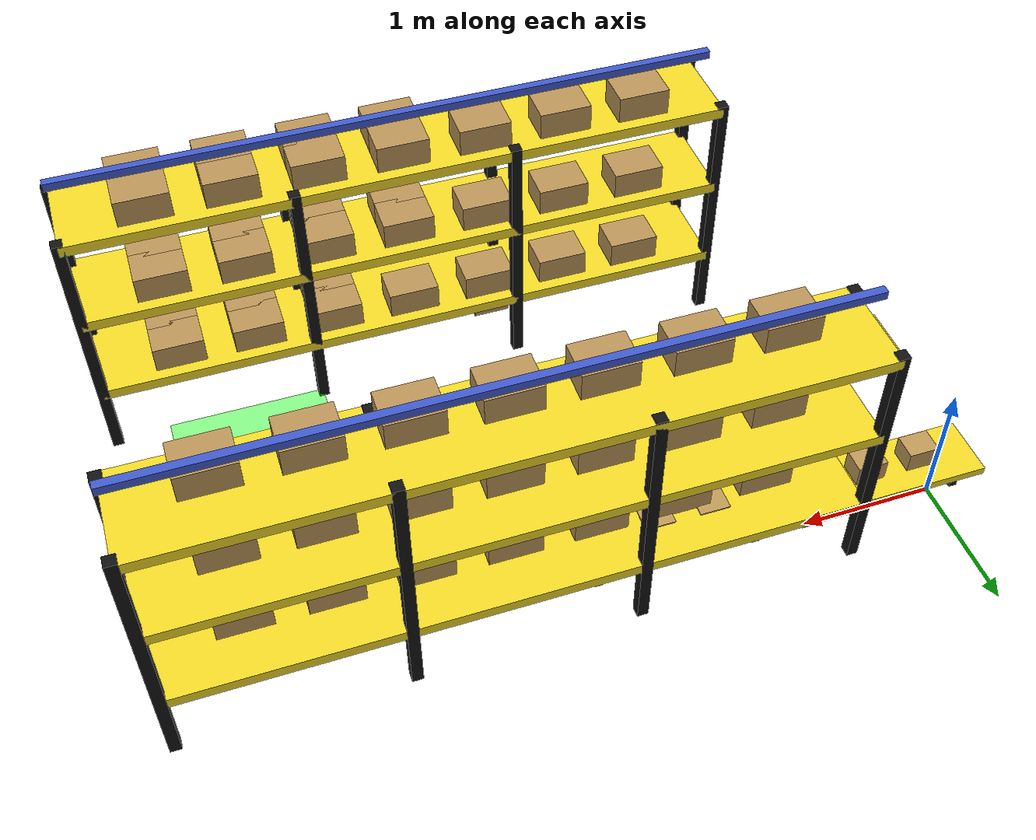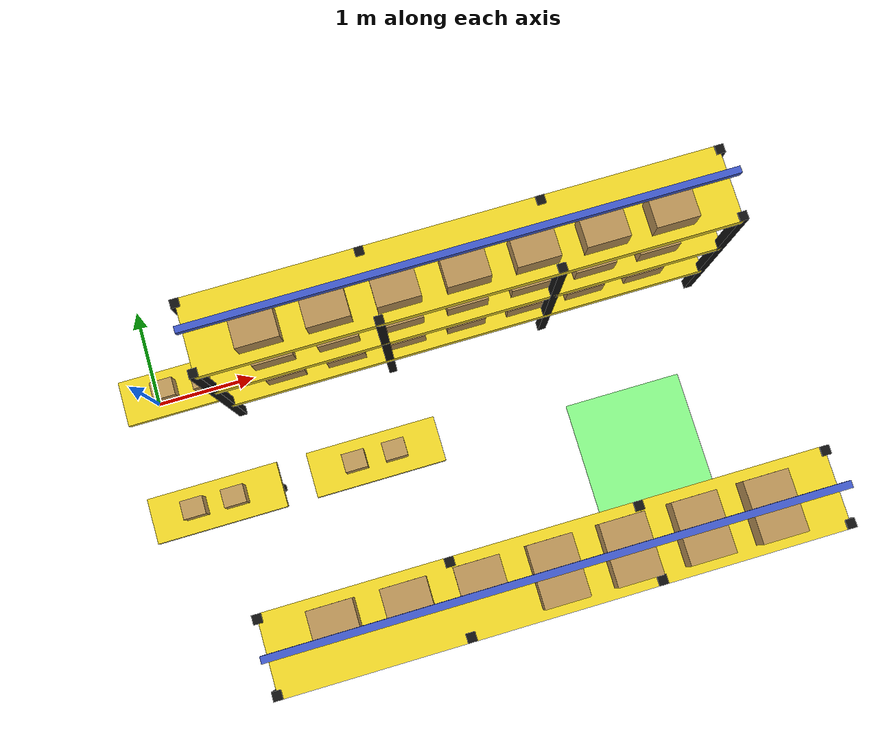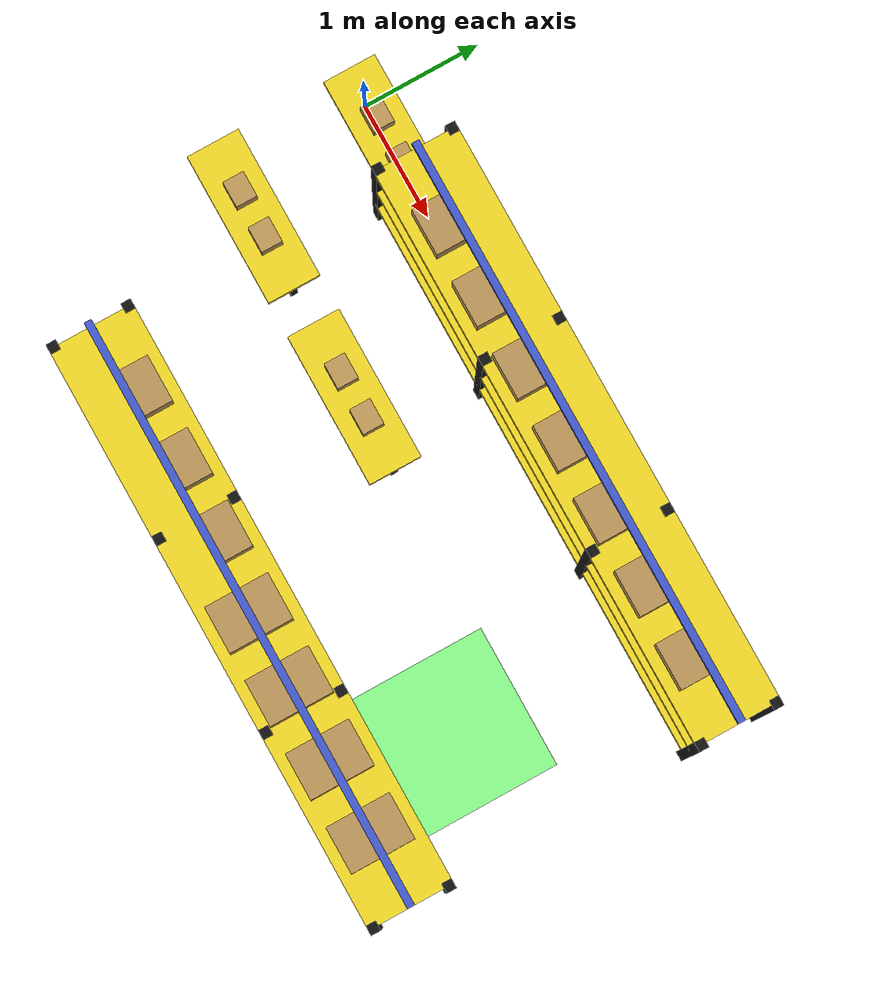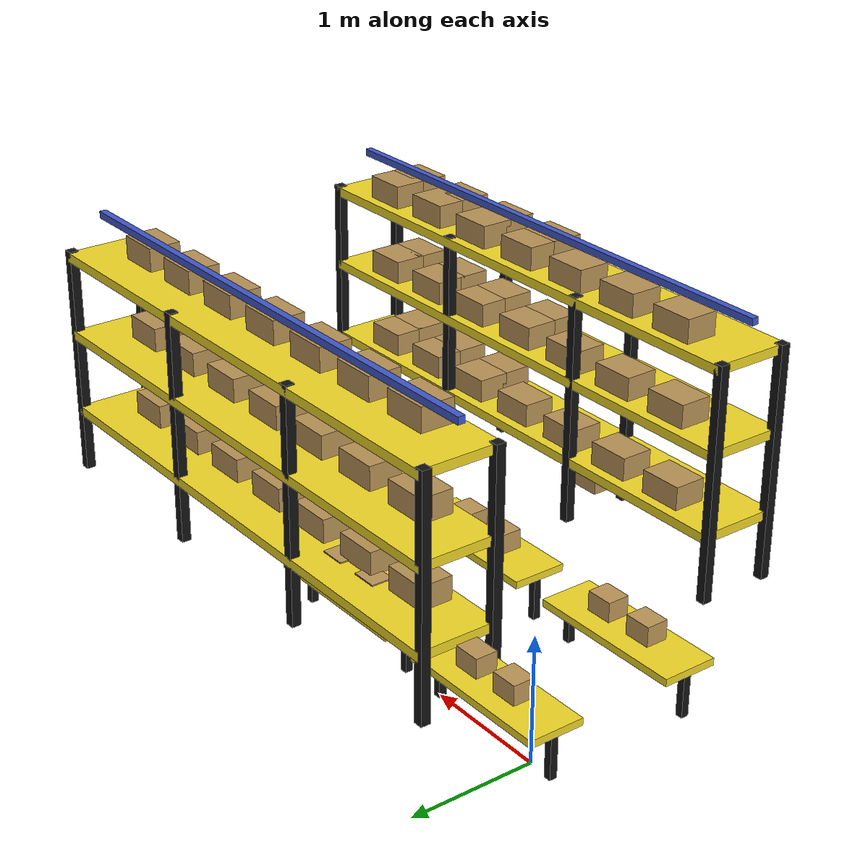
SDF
<sdf version="1.6">
 <world name="fuel_warehouse_world">
  <include><uri>model://sun</uri></include>
  <model name="right_rack_middle">
   <static>true</static>
   <pose>3.2 0.0 0 0 0 0.0</pose>
   <link name="deck_0">
    <pose>0 0 0.55 0 0 0</pose>
    <visual name="visual">
     <geometry><box><size>4.8 0.7 0.08</size></box></geometry>
     <material><ambient>0.95 0.85 0.15 1</ambient><diffuse>0.95 0.85 0.15 1</diffuse></material>
    </visual>
    <collision name="collision"><geometry><box><size>4.8 0.7 0.08</size></box></geometry></collision>
   </link>
   <link name="deck_1">
    <pose>0 0 1.25 0 0 0</pose>
    <visual name="visual">
     <geometry><box><size>4.8 0.7 0.08</size></box></geometry>
     <material><ambient>0.95 0.85 0.15 1</ambient><diffuse>0.95 0.85 0.15 1</diffuse></material>
    </visual>
    <collision name="collision"><geometry><box><size>4.8 0.7 0.08</size></box></geometry></collision>
   </link>
   <link name="deck_2">
    <pose>0 0 1.95 0 0 0</pose>
    <visual name="visual">
     <geometry><box><size>4.8 0.7 0.08</size></box></geometry>
     <material><ambient>0.95 0.85 0.15 1</ambient><diffuse>0.95 0.85 0.15 1</diffuse></material>
    </visual>
    <collision name="collision"><geometry><box><size>4.8 0.7 0.08</size></box></geometry></collision>
   </link>
   <link name="leg_0_0">
    <pose>-2.4 -0.31 1.0 0 0 0</pose>
    <visual name="visual">
     <geometry><box><size>0.08 0.08 2.0</size></box></geometry>
     <material><ambient>0.07 0.07 0.07 1</ambient><diffuse>0.07 0.07 0.07 1</diffuse></material>
    </visual>
    <collision name="collision"><geometry><box><size>0.08 0.08 2.0</size></box></geometry></collision>
   </link>
   <link name="leg_0_1">
    <pose>-2.4 0.31 1.0 0 0 0</pose>
    <visual name="visual">
     <geometry><box><size>0.08 0.08 2.0</size></box></geometry>
     <material><ambient>0.07 0.07 0.07 1</ambient><diffuse>0.07 0.07 0.07 1</diffuse></material>
    </visual>
    <collision name="collision"><geometry><box><size>0.08 0.08 2.0</size></box></geometry></collision>
   </link>
   <link name="leg_1_0">
    <pose>-0.7999999999999999 -0.31 1.0 0 0 0</pose>
    <visual name="visual">
     <geometry><box><size>0.08 0.08 2.0</size></box></geometry>
     <material><ambient>0.07 0.07 0.07 1</ambient><diffuse>0.07 0.07 0.07 1</diffuse></material>
    </visual>
    <collision name="collision"><geometry><box><size>0.08 0.08 2.0</size></box></geometry></collision>
   </link>
   <link name="leg_1_1">
    <pose>-0.7999999999999999 0.31 1.0 0 0 0</pose>
    <visual name="visual">
     <geometry><box><size>0.08 0.08 2.0</size></box></geometry>
     <material><ambient>0.07 0.07 0.07 1</ambient><diffuse>0.07 0.07 0.07 1</diffuse></material>
    </visual>
    <collision name="collision"><geometry><box><size>0.08 0.08 2.0</size></box></geometry></collision>
   </link>
   <link name="leg_2_0">
    <pose>0.7999999999999999 -0.31 1.0 0 0 0</pose>
    <visual name="visual">
     <geometry><box><size>0.08 0.08 2.0</size></box></geometry>
     <material><ambient>0.07 0.07 0.07 1</ambient><diffuse>0.07 0.07 0.07 1</diffuse></material>
    </visual>
    <collision name="collision"><geometry><box><size>0.08 0.08 2.0</size></box></geometry></collision>
   </link>
   <link name="leg_2_1">
    <pose>0.7999999999999999 0.31 1.0 0 0 0</pose>
    <visual name="visual">
     <geometry><box><size>0.08 0.08 2.0</size></box></geometry>
     <material><ambient>0.07 0.07 0.07 1</ambient><diffuse>0.07 0.07 0.07 1</diffuse></material>
    </visual>
    <collision name="collision"><geometry><box><size>0.08 0.08 2.0</size></box></geometry></collision>
   </link>
   <link name="leg_3_0">
    <pose>2.4 -0.31 1.0 0 0 0</pose>
    <visual name="visual">
     <geometry><box><size>0.08 0.08 2.0</size></box></geometry>
     <material><ambient>0.07 0.07 0.07 1</ambient><diffuse>0.07 0.07 0.07 1</diffuse></material>
    </visual>
    <collision name="collision"><geometry><box><size>0.08 0.08 2.0</size></box></geometry></collision>
   </link>
   <link name="leg_3_1">
    <pose>2.4 0.31 1.0 0 0 0</pose>
    <visual name="visual">
     <geometry><box><size>0.08 0.08 2.0</size></box></geometry>
     <material><ambient>0.07 0.07 0.07 1</ambient><diffuse>0.07 0.07 0.07 1</diffuse></material>
    </visual>
    <collision name="collision"><geometry><box><size>0.08 0.08 2.0</size></box></geometry></collision>
   </link>
   <link name="top_beam">
    <pose>0 0 2.25 0 0 0</pose>
    <visual name="visual">
     <geometry><box><size>4.8 0.06 0.06</size></box></geometry>
     <material><ambient>0.25 0.35 0.8 1</ambient><diffuse>0.25 0.35 0.8 1</diffuse></material>
    </visual>
   </link>
  </model>
  <model name="right_rack_middle_box_0">
   <static>true</static>
   <pose>1.4000000000000001 -0.12 0.68 0 0 0</pose>
   <link name="link">
    <visual name="visual">
     <geometry><box><size>0.38 0.28 0.22</size></box></geometry>
     <material><ambient>0.73 0.58 0.34 1</ambient><diffuse>0.73 0.58 0.34 1</diffuse></material>
    </visual>
    <collision name="collision"><geometry><box><size>0.38 0.28 0.22</size></box></geometry></collision>
   </link>
  </model>
  <model name="right_rack_middle_box_2">
   <static>true</static>
   <pose>2.0 -0.12 0.68 0 0 0</pose>
   <link name="link">
    <visual name="visual">
     <geometry><box><size>0.38 0.28 0.22</size></box></geometry>
     <material><ambient>0.73 0.58 0.34 1</ambient><diffuse>0.73 0.58 0.34 1</diffuse></material>
    </visual>
    <collision name="collision"><geometry><box><size>0.38 0.28 0.22</size></box></geometry></collision>
   </link>
  </model>
  <model name="right_rack_middle_box_4">
   <static>true</static>
   <pose>2.6 -0.12 0.68 0 0 0</pose>
   <link name="link">
    <visual name="visual">
     <geometry><box><size>0.38 0.28 0.22</size></box></geometry>
     <material><ambient>0.73 0.58 0.34 1</ambient><diffuse>0.73 0.58 0.34 1</diffuse></material>
    </visual>
    <collision name="collision"><geometry><box><size>0.38 0.28 0.22</size></box></geometry></collision>
   </link>
  </model>
  <model name="right_rack_middle_box_6">
   <static>true</static>
   <pose>3.2 -0.12 0.68 0 0 0</pose>
   <link name="link">
    <visual name="visual">
     <geometry><box><size>0.38 0.28 0.22</size></box></geometry>
     <material><ambient>0.73 0.58 0.34 1</ambient><diffuse>0.73 0.58 0.34 1</diffuse></material>
    </visual>
    <collision name="collision"><geometry><box><size>0.38 0.28 0.22</size></box></geometry></collision>
   </link>
  </model>
  <model name="right_rack_middle_box_8">
   <static>true</static>
   <pose>3.8000000000000003 -0.12 0.68 0 0 0</pose>
   <link name="link">
    <visual name="visual">
     <geometry><box><size>0.38 0.28 0.22</size></box></geometry>
     <material><ambient>0.73 0.58 0.34 1</ambient><diffuse>0.73 0.58 0.34 1</diffuse></material>
    </visual>
    <collision name="collision"><geometry><box><size>0.38 0.28 0.22</size></box></geometry></collision>
   </link>
  </model>
  <model name="right_rack_middle_box_10">
   <static>true</static>
   <pose>4.4 -0.12 0.68 0 0 0</pose>
   <link name="link">
    <visual name="visual">
     <geometry><box><size>0.38 0.28 0.22</size></box></geometry>
     <material><ambient>0.73 0.58 0.34 1</ambient><diffuse>0.73 0.58 0.34 1</diffuse></material>
    </visual>
    <collision name="collision"><geometry><box><size>0.38 0.28 0.22</size></box></geometry></collision>
   </link>
  </model>
  <model name="right_rack_middle_box_12">
   <static>true</static>
   <pose>5.0 -0.12 0.68 0 0 0</pose>
   <link name="link">
    <visual name="visual">
     <geometry><box><size>0.38 0.28 0.22</size></box></geometry>
     <material><ambient>0.73 0.58 0.34 1</ambient><diffuse>0.73 0.58 0.34 1</diffuse></material>
    </visual>
    <collision name="collision"><geometry><box><size>0.38 0.28 0.22</size></box></geometry></collision>
   </link>
  </model>
  <model name="right_rack_middle_box_14">
   <static>true</static>
   <pose>1.4000000000000001 -0.12 1.38 0 0 0</pose>
   <link name="link">
    <visual name="visual">
     <geometry><box><size>0.38 0.28 0.22</size></box></geometry>
     <material><ambient>0.73 0.58 0.34 1</ambient><diffuse>0.73 0.58 0.34 1</diffuse></material>
    </visual>
    <collision name="collision"><geometry><box><size>0.38 0.28 0.22</size></box></geometry></collision>
   </link>
  </model>
  <model name="right_rack_middle_box_16">
   <static>true</static>
   <pose>2.0 -0.12 1.38 0 0 0</pose>
   <link name="link">
    <visual name="visual">
     <geometry><box><size>0.38 0.28 0.22</size></box></geometry>
     <material><ambient>0.73 0.58 0.34 1</ambient><diffuse>0.73 0.58 0.34 1</diffuse></material>
    </visual>
    <collision name="collision"><geometry><box><size>0.38 0.28 0.22</size></box></geometry></collision>
   </link>
  </model>
  <model name="right_rack_middle_box_18">
   <static>true</static>
   <pose>2.6 -0.12 1.38 0 0 0</pose>
   <link name="link">
    <visual name="visual">
     <geometry><box><size>0.38 0.28 0.22</size></box></geometry>
     <material><ambient>0.73 0.58 0.34 1</ambient><diffuse>0.73 0.58 0.34 1</diffuse></material>
    </visual>
    <collision name="collision"><geometry><box><size>0.38 0.28 0.22</size></box></geometry></collision>
   </link>
  </model>
  <model name="right_rack_middle_box_20">
   <static>true</static>
   <pose>3.2 -0.12 1.38 0 0 0</pose>
   <link name="link">
    <visual name="visual">
     <geometry><box><size>0.38 0.28 0.22</size></box></geometry>
     <material><ambient>0.73 0.58 0.34 1</ambient><diffuse>0.73 0.58 0.34 1</diffuse></material>
    </visual>
    <collision name="collision"><geometry><box><size>0.38 0.28 0.22</size></box></geometry></collision>
   </link>
  </model>
  <model name="right_rack_middle_box_22">
   <static>true</static>
   <pose>3.8000000000000003 -0.12 1.38 0 0 0</pose>
   <link name="link">
    <visual name="visual">
     <geometry><box><size>0.38 0.28 0.22</size></box></geometry>
     <material><ambient>0.73 0.58 0.34 1</ambient><diffuse>0.73 0.58 0.34 1</diffuse></material>
    </visual>
    <collision name="collision"><geometry><box><size>0.38 0.28 0.22</size></box></geometry></collision>
   </link>
  </model>
  <model name="right_rack_middle_box_24">
   <static>true</static>
   <pose>4.4 -0.12 1.38 0 0 0</pose>
   <link name="link">
    <visual name="visual">
     <geometry><box><size>0.38 0.28 0.22</size></box></geometry>
     <material><ambient>0.73 0.58 0.34 1</ambient><diffuse>0.73 0.58 0.34 1</diffuse></material>
    </visual>
    <collision name="collision"><geometry><box><size>0.38 0.28 0.22</size></box></geometry></collision>
   </link>
  </model>
  <model name="right_rack_middle_box_26">
   <static>true</static>
   <pose>5.0 -0.12 1.38 0 0 0</pose>
   <link name="link">
    <visual name="visual">
     <geometry><box><size>0.38 0.28 0.22</size></box></geometry>
     <material><ambient>0.73 0.58 0.34 1</ambient><diffuse>0.73 0.58 0.34 1</diffuse></material>
    </visual>
    <collision name="collision"><geometry><box><size>0.38 0.28 0.22</size></box></geometry></collision>
   </link>
  </model>
  <model name="right_rack_middle_box_28">
   <static>true</static>
   <pose>1.4000000000000001 -0.12 2.08 0 0 0</pose>
   <link name="link">
    <visual name="visual">
     <geometry><box><size>0.38 0.28 0.22</size></box></geometry>
     <material><ambient>0.73 0.58 0.34 1</ambient><diffuse>0.73 0.58 0.34 1</diffuse></material>
    </visual>
    <collision name="collision"><geometry><box><size>0.38 0.28 0.22</size></box></geometry></collision>
   </link>
  </model>
  <model name="right_rack_middle_box_30">
   <static>true</static>
   <pose>2.0 -0.12 2.08 0 0 0</pose>
   <link name="link">
    <visual name="visual">
     <geometry><box><size>0.38 0.28 0.22</size></box></geometry>
     <material><ambient>0.73 0.58 0.34 1</ambient><diffuse>0.73 0.58 0.34 1</diffuse></material>
    </visual>
    <collision name="collision"><geometry><box><size>0.38 0.28 0.22</size></box></geometry></collision>
   </link>
  </model>
  <model name="right_rack_middle_box_32">
   <static>true</static>
   <pose>2.6 -0.12 2.08 0 0 0</pose>
   <link name="link">
    <visual name="visual">
     <geometry><box><size>0.38 0.28 0.22</size></box></geometry>
     <material><ambient>0.73 0.58 0.34 1</ambient><diffuse>0.73 0.58 0.34 1</diffuse></material>
    </visual>
    <collision name="collision"><geometry><box><size>0.38 0.28 0.22</size></box></geometry></collision>
   </link>
  </model>
  <model name="right_rack_middle_box_34">
   <static>true</static>
   <pose>3.2 -0.12 2.08 0 0 0</pose>
   <link name="link">
    <visual name="visual">
     <geometry><box><size>0.38 0.28 0.22</size></box></geometry>
     <material><ambient>0.73 0.58 0.34 1</ambient><diffuse>0.73 0.58 0.34 1</diffuse></material>
    </visual>
    <collision name="collision"><geometry><box><size>0.38 0.28 0.22</size></box></geometry></collision>
   </link>
  </model>
  <model name="right_rack_middle_box_36">
   <static>true</static>
   <pose>3.8000000000000003 -0.12 2.08 0 0 0</pose>
   <link name="link">
    <visual name="visual">
     <geometry><box><size>0.38 0.28 0.22</size></box></geometry>
     <material><ambient>0.73 0.58 0.34 1</ambient><diffuse>0.73 0.58 0.34 1</diffuse></material>
    </visual>
    <collision name="collision"><geometry><box><size>0.38 0.28 0.22</size></box></geometry></collision>
   </link>
  </model>
  <model name="right_rack_middle_box_38">
   <static>true</static>
   <pose>4.4 -0.12 2.08 0 0 0</pose>
   <link name="link">
    <visual name="visual">
     <geometry><box><size>0.38 0.28 0.22</size></box></geometry>
     <material><ambient>0.73 0.58 0.34 1</ambient><diffuse>0.73 0.58 0.34 1</diffuse></material>
    </visual>
    <collision name="collision"><geometry><box><size>0.38 0.28 0.22</size></box></geometry></collision>
   </link>
  </model>
  <model name="right_rack_middle_box_40">
   <static>true</static>
   <pose>5.0 -0.12 2.08 0 0 0</pose>
   <link name="link">
    <visual name="visual">
     <geometry><box><size>0.38 0.28 0.22</size></box></geometry>
     <material><ambient>0.73 0.58 0.34 1</ambient><diffuse>0.73 0.58 0.34 1</diffuse></material>
    </visual>
    <collision name="collision"><geometry><box><size>0.38 0.28 0.22</size></box></geometry></collision>
   </link>
  </model>
  <model name="right_rack_bottom">
   <static>true</static>
   <pose>3.2 -2.7 0 0 0 0.0</pose>
   <link name="deck_0">
    <pose>0 0 0.55 0 0 0</pose>
    <visual name="visual">
     <geometry><box><size>4.8 0.7 0.08</size></box></geometry>
     <material><ambient>0.95 0.85 0.15 1</ambient><diffuse>0.95 0.85 0.15 1</diffuse></material>
    </visual>
    <collision name="collision"><geometry><box><size>4.8 0.7 0.08</size></box></geometry></collision>
   </link>
   <link name="deck_1">
    <pose>0 0 1.25 0 0 0</pose>
    <visual name="visual">
     <geometry><box><size>4.8 0.7 0.08</size></box></geometry>
     <material><ambient>0.95 0.85 0.15 1</ambient><diffuse>0.95 0.85 0.15 1</diffuse></material>
    </visual>
    <collision name="collision"><geometry><box><size>4.8 0.7 0.08</size></box></geometry></collision>
   </link>
   <link name="deck_2">
    <pose>0 0 1.95 0 0 0</pose>
    <visual name="visual">
     <geometry><box><size>4.8 0.7 0.08</size></box></geometry>
     <material><ambient>0.95 0.85 0.15 1</ambient><diffuse>0.95 0.85 0.15 1</diffuse></material>
    </visual>
    <collision name="collision"><geometry><box><size>4.8 0.7 0.08</size></box></geometry></collision>
   </link>
   <link name="leg_0_0">
    <pose>-2.4 -0.31 1.0 0 0 0</pose>
    <visual name="visual">
     <geometry><box><size>0.08 0.08 2.0</size></box></geometry>
     <material><ambient>0.07 0.07 0.07 1</ambient><diffuse>0.07 0.07 0.07 1</diffuse></material>
    </visual>
    <collision name="collision"><geometry><box><size>0.08 0.08 2.0</size></box></geometry></collision>
   </link>
   <link name="leg_0_1">
    <pose>-2.4 0.31 1.0 0 0 0</pose>
    <visual name="visual">
     <geometry><box><size>0.08 0.08 2.0</size></box></geometry>
     <material><ambient>0.07 0.07 0.07 1</ambient><diffuse>0.07 0.07 0.07 1</diffuse></material>
    </visual>
    <collision name="collision"><geometry><box><size>0.08 0.08 2.0</size></box></geometry></collision>
   </link>
   <link name="leg_1_0">
    <pose>-0.7999999999999999 -0.31 1.0 0 0 0</pose>
    <visual name="visual">
     <geometry><box><size>0.08 0.08 2.0</size></box></geometry>
     <material><ambient>0.07 0.07 0.07 1</ambient><diffuse>0.07 0.07 0.07 1</diffuse></material>
    </visual>
    <collision name="collision"><geometry><box><size>0.08 0.08 2.0</size></box></geometry></collision>
   </link>
   <link name="leg_1_1">
    <pose>-0.7999999999999999 0.31 1.0 0 0 0</pose>
    <visual name="visual">
     <geometry><box><size>0.08 0.08 2.0</size></box></geometry>
     <material><ambient>0.07 0.07 0.07 1</ambient><diffuse>0.07 0.07 0.07 1</diffuse></material>
    </visual>
    <collision name="collision"><geometry><box><size>0.08 0.08 2.0</size></box></geometry></collision>
   </link>
   <link name="leg_2_0">
    <pose>0.7999999999999999 -0.31 1.0 0 0 0</pose>
    <visual name="visual">
     <geometry><box><size>0.08 0.08 2.0</size></box></geometry>
     <material><ambient>0.07 0.07 0.07 1</ambient><diffuse>0.07 0.07 0.07 1</diffuse></material>
    </visual>
    <collision name="collision"><geometry><box><size>0.08 0.08 2.0</size></box></geometry></collision>
   </link>
   <link name="leg_2_1">
    <pose>0.7999999999999999 0.31 1.0 0 0 0</pose>
    <visual name="visual">
     <geometry><box><size>0.08 0.08 2.0</size></box></geometry>
     <material><ambient>0.07 0.07 0.07 1</ambient><diffuse>0.07 0.07 0.07 1</diffuse></material>
    </visual>
    <collision name="collision"><geometry><box><size>0.08 0.08 2.0</size></box></geometry></collision>
   </link>
   <link name="leg_3_0">
    <pose>2.4 -0.31 1.0 0 0 0</pose>
    <visual name="visual">
     <geometry><box><size>0.08 0.08 2.0</size></box></geometry>
     <material><ambient>0.07 0.07 0.07 1</ambient><diffuse>0.07 0.07 0.07 1</diffuse></material>
    </visual>
    <collision name="collision"><geometry><box><size>0.08 0.08 2.0</size></box></geometry></collision>
   </link>
   <link name="leg_3_1">
    <pose>2.4 0.31 1.0 0 0 0</pose>
    <visual name="visual">
     <geometry><box><size>0.08 0.08 2.0</size></box></geometry>
     <material><ambient>0.07 0.07 0.07 1</ambient><diffuse>0.07 0.07 0.07 1</diffuse></material>
    </visual>
    <collision name="collision"><geometry><box><size>0.08 0.08 2.0</size></box></geometry></collision>
   </link>
   <link name="top_beam">
    <pose>0 0 2.25 0 0 0</pose>
    <visual name="visual">
     <geometry><box><size>4.8 0.06 0.06</size></box></geometry>
     <material><ambient>0.25 0.35 0.8 1</ambient><diffuse>0.25 0.35 0.8 1</diffuse></material>
    </visual>
   </link>
  </model>
  <model name="right_rack_bottom_box_1">
   <static>true</static>
   <pose>1.4000000000000001 -2.58 0.68 0 0 0</pose>
   <link name="link">
    <visual name="visual">
     <geometry><box><size>0.38 0.28 0.22</size></box></geometry>
     <material><ambient>0.73 0.58 0.34 1</ambient><diffuse>0.73 0.58 0.34 1</diffuse></material>
    </visual>
    <collision name="collision"><geometry><box><size>0.38 0.28 0.22</size></box></geometry></collision>
   </link>
  </model>
  <model name="right_rack_bottom_box_3">
   <static>true</static>
   <pose>2.0 -2.58 0.68 0 0 0</pose>
   <link name="link">
    <visual name="visual">
     <geometry><box><size>0.38 0.28 0.22</size></box></geometry>
     <material><ambient>0.73 0.58 0.34 1</ambient><diffuse>0.73 0.58 0.34 1</diffuse></material>
    </visual>
    <collision name="collision"><geometry><box><size>0.38 0.28 0.22</size></box></geometry></collision>
   </link>
  </model>
  <model name="right_rack_bottom_box_5">
   <static>true</static>
   <pose>2.6 -2.58 0.68 0 0 0</pose>
   <link name="link">
    <visual name="visual">
     <geometry><box><size>0.38 0.28 0.22</size></box></geometry>
     <material><ambient>0.73 0.58 0.34 1</ambient><diffuse>0.73 0.58 0.34 1</diffuse></material>
    </visual>
    <collision name="collision"><geometry><box><size>0.38 0.28 0.22</size></box></geometry></collision>
   </link>
  </model>
  <model name="right_rack_bottom_box_7">
   <static>true</static>
   <pose>3.2 -2.58 0.68 0 0 0</pose>
   <link name="link">
    <visual name="visual">
     <geometry><box><size>0.38 0.28 0.22</size></box></geometry>
     <material><ambient>0.73 0.58 0.34 1</ambient><diffuse>0.73 0.58 0.34 1</diffuse></material>
    </visual>
    <collision name="collision"><geometry><box><size>0.38 0.28 0.22</size></box></geometry></collision>
   </link>
  </model>
  <model name="right_rack_bottom_box_8">
   <static>true</static>
   <pose>3.8000000000000003 -2.8200000000000003 0.68 0 0 0</pose>
   <link name="link">
    <visual name="visual">
     <geometry><box><size>0.38 0.28 0.22</size></box></geometry>
     <material><ambient>0.73 0.58 0.34 1</ambient><diffuse>0.73 0.58 0.34 1</diffuse></material>
    </visual>
    <collision name="collision"><geometry><box><size>0.38 0.28 0.22</size></box></geometry></collision>
   </link>
  </model>
  <model name="right_rack_bottom_box_9">
   <static>true</static>
   <pose>3.8000000000000003 -2.58 0.68 0 0 0</pose>
   <link name="link">
    <visual name="visual">
     <geometry><box><size>0.38 0.28 0.22</size></box></geometry>
     <material><ambient>0.73 0.58 0.34 1</ambient><diffuse>0.73 0.58 0.34 1</diffuse></material>
    </visual>
    <collision name="collision"><geometry><box><size>0.38 0.28 0.22</size></box></geometry></collision>
   </link>
  </model>
  <model name="right_rack_bottom_box_10">
   <static>true</static>
   <pose>4.4 -2.8200000000000003 0.68 0 0 0</pose>
   <link name="link">
    <visual name="visual">
     <geometry><box><size>0.38 0.28 0.22</size></box></geometry>
     <material><ambient>0.73 0.58 0.34 1</ambient><diffuse>0.73 0.58 0.34 1</diffuse></material>
    </visual>
    <collision name="collision"><geometry><box><size>0.38 0.28 0.22</size></box></geometry></collision>
   </link>
  </model>
  <model name="right_rack_bottom_box_11">
   <static>true</static>
   <pose>4.4 -2.58 0.68 0 0 0</pose>
   <link name="link">
    <visual name="visual">
     <geometry><box><size>0.38 0.28 0.22</size></box></geometry>
     <material><ambient>0.73 0.58 0.34 1</ambient><diffuse>0.73 0.58 0.34 1</diffuse></material>
    </visual>
    <collision name="collision"><geometry><box><size>0.38 0.28 0.22</size></box></geometry></collision>
   </link>
  </model>
  <model name="right_rack_bottom_box_12">
   <static>true</static>
   <pose>5.0 -2.8200000000000003 0.68 0 0 0</pose>
   <link name="link">
    <visual name="visual">
     <geometry><box><size>0.38 0.28 0.22</size></box></geometry>
     <material><ambient>0.73 0.58 0.34 1</ambient><diffuse>0.73 0.58 0.34 1</diffuse></material>
    </visual>
    <collision name="collision"><geometry><box><size>0.38 0.28 0.22</size></box></geometry></collision>
   </link>
  </model>
  <model name="right_rack_bottom_box_13">
   <static>true</static>
   <pose>5.0 -2.58 0.68 0 0 0</pose>
   <link name="link">
    <visual name="visual">
     <geometry><box><size>0.38 0.28 0.22</size></box></geometry>
     <material><ambient>0.73 0.58 0.34 1</ambient><diffuse>0.73 0.58 0.34 1</diffuse></material>
    </visual>
    <collision name="collision"><geometry><box><size>0.38 0.28 0.22</size></box></geometry></collision>
   </link>
  </model>
  <model name="right_rack_bottom_box_15">
   <static>true</static>
   <pose>1.4000000000000001 -2.58 1.38 0 0 0</pose>
   <link name="link">
    <visual name="visual">
     <geometry><box><size>0.38 0.28 0.22</size></box></geometry>
     <material><ambient>0.73 0.58 0.34 1</ambient><diffuse>0.73 0.58 0.34 1</diffuse></material>
    </visual>
    <collision name="collision"><geometry><box><size>0.38 0.28 0.22</size></box></geometry></collision>
   </link>
  </model>
  <model name="right_rack_bottom_box_17">
   <static>true</static>
   <pose>2.0 -2.58 1.38 0 0 0</pose>
   <link name="link">
    <visual name="visual">
     <geometry><box><size>0.38 0.28 0.22</size></box></geometry>
     <material><ambient>0.73 0.58 0.34 1</ambient><diffuse>0.73 0.58 0.34 1</diffuse></material>
    </visual>
    <collision name="collision"><geometry><box><size>0.38 0.28 0.22</size></box></geometry></collision>
   </link>
  </model>
  <model name="right_rack_bottom_box_19">
   <static>true</static>
   <pose>2.6 -2.58 1.38 0 0 0</pose>
   <link name="link">
    <visual name="visual">
     <geometry><box><size>0.38 0.28 0.22</size></box></geometry>
     <material><ambient>0.73 0.58 0.34 1</ambient><diffuse>0.73 0.58 0.34 1</diffuse></material>
    </visual>
    <collision name="collision"><geometry><box><size>0.38 0.28 0.22</size></box></geometry></collision>
   </link>
  </model>
  <model name="right_rack_bottom_box_20">
   <static>true</static>
   <pose>3.2 -2.8200000000000003 1.38 0 0 0</pose>
   <link name="link">
    <visual name="visual">
     <geometry><box><size>0.38 0.28 0.22</size></box></geometry>
     <material><ambient>0.73 0.58 0.34 1</ambient><diffuse>0.73 0.58 0.34 1</diffuse></material>
    </visual>
    <collision name="collision"><geometry><box><size>0.38 0.28 0.22</size></box></geometry></collision>
   </link>
  </model>
  <model name="right_rack_bottom_box_21">
   <static>true</static>
   <pose>3.2 -2.58 1.38 0 0 0</pose>
   <link name="link">
    <visual name="visual">
     <geometry><box><size>0.38 0.28 0.22</size></box></geometry>
     <material><ambient>0.73 0.58 0.34 1</ambient><diffuse>0.73 0.58 0.34 1</diffuse></material>
    </visual>
    <collision name="collision"><geometry><box><size>0.38 0.28 0.22</size></box></geometry></collision>
   </link>
  </model>
  <model name="right_rack_bottom_box_22">
   <static>true</static>
   <pose>3.8000000000000003 -2.8200000000000003 1.38 0 0 0</pose>
   <link name="link">
    <visual name="visual">
     <geometry><box><size>0.38 0.28 0.22</size></box></geometry>
     <material><ambient>0.73 0.58 0.34 1</ambient><diffuse>0.73 0.58 0.34 1</diffuse></material>
    </visual>
    <collision name="collision"><geometry><box><size>0.38 0.28 0.22</size></box></geometry></collision>
   </link>
  </model>
  <model name="right_rack_bottom_box_23">
   <static>true</static>
   <pose>3.8000000000000003 -2.58 1.38 0 0 0</pose>
   <link name="link">
    <visual name="visual">
     <geometry><box><size>0.38 0.28 0.22</size></box></geometry>
     <material><ambient>0.73 0.58 0.34 1</ambient><diffuse>0.73 0.58 0.34 1</diffuse></material>
    </visual>
    <collision name="collision"><geometry><box><size>0.38 0.28 0.22</size></box></geometry></collision>
   </link>
  </model>
  <model name="right_rack_bottom_box_24">
   <static>true</static>
   <pose>4.4 -2.8200000000000003 1.38 0 0 0</pose>
   <link name="link">
    <visual name="visual">
     <geometry><box><size>0.38 0.28 0.22</size></box></geometry>
     <material><ambient>0.73 0.58 0.34 1</ambient><diffuse>0.73 0.58 0.34 1</diffuse></material>
    </visual>
    <collision name="collision"><geometry><box><size>0.38 0.28 0.22</size></box></geometry></collision>
   </link>
  </model>
  <model name="right_rack_bottom_box_25">
   <static>true</static>
   <pose>4.4 -2.58 1.38 0 0 0</pose>
   <link name="link">
    <visual name="visual">
     <geometry><box><size>0.38 0.28 0.22</size></box></geometry>
     <material><ambient>0.73 0.58 0.34 1</ambient><diffuse>0.73 0.58 0.34 1</diffuse></material>
    </visual>
    <collision name="collision"><geometry><box><size>0.38 0.28 0.22</size></box></geometry></collision>
   </link>
  </model>
  <model name="right_rack_bottom_box_26">
   <static>true</static>
   <pose>5.0 -2.8200000000000003 1.38 0 0 0</pose>
   <link name="link">
    <visual name="visual">
     <geometry><box><size>0.38 0.28 0.22</size></box></geometry>
     <material><ambient>0.73 0.58 0.34 1</ambient><diffuse>0.73 0.58 0.34 1</diffuse></material>
    </visual>
    <collision name="collision"><geometry><box><size>0.38 0.28 0.22</size></box></geometry></collision>
   </link>
  </model>
  <model name="right_rack_bottom_box_27">
   <static>true</static>
   <pose>5.0 -2.58 1.38 0 0 0</pose>
   <link name="link">
    <visual name="visual">
     <geometry><box><size>0.38 0.28 0.22</size></box></geometry>
     <material><ambient>0.73 0.58 0.34 1</ambient><diffuse>0.73 0.58 0.34 1</diffuse></material>
    </visual>
    <collision name="collision"><geometry><box><size>0.38 0.28 0.22</size></box></geometry></collision>
   </link>
  </model>
  <model name="right_rack_bottom_box_29">
   <static>true</static>
   <pose>1.4000000000000001 -2.58 2.08 0 0 0</pose>
   <link name="link">
    <visual name="visual">
     <geometry><box><size>0.38 0.28 0.22</size></box></geometry>
     <material><ambient>0.73 0.58 0.34 1</ambient><diffuse>0.73 0.58 0.34 1</diffuse></material>
    </visual>
    <collision name="collision"><geometry><box><size>0.38 0.28 0.22</size></box></geometry></collision>
   </link>
  </model>
  <model name="right_rack_bottom_box_31">
   <static>true</static>
   <pose>2.0 -2.58 2.08 0 0 0</pose>
   <link name="link">
    <visual name="visual">
     <geometry><box><size>0.38 0.28 0.22</size></box></geometry>
     <material><ambient>0.73 0.58 0.34 1</ambient><diffuse>0.73 0.58 0.34 1</diffuse></material>
    </visual>
    <collision name="collision"><geometry><box><size>0.38 0.28 0.22</size></box></geometry></collision>
   </link>
  </model>
  <model name="right_rack_bottom_box_33">
   <static>true</static>
   <pose>2.6 -2.58 2.08 0 0 0</pose>
   <link name="link">
    <visual name="visual">
     <geometry><box><size>0.38 0.28 0.22</size></box></geometry>
     <material><ambient>0.73 0.58 0.34 1</ambient><diffuse>0.73 0.58 0.34 1</diffuse></material>
    </visual>
    <collision name="collision"><geometry><box><size>0.38 0.28 0.22</size></box></geometry></collision>
   </link>
  </model>
  <model name="right_rack_bottom_box_34">
   <static>true</static>
   <pose>3.2 -2.8200000000000003 2.08 0 0 0</pose>
   <link name="link">
    <visual name="visual">
     <geometry><box><size>0.38 0.28 0.22</size></box></geometry>
     <material><ambient>0.73 0.58 0.34 1</ambient><diffuse>0.73 0.58 0.34 1</diffuse></material>
    </visual>
    <collision name="collision"><geometry><box><size>0.38 0.28 0.22</size></box></geometry></collision>
   </link>
  </model>
  <model name="right_rack_bottom_box_35">
   <static>true</static>
   <pose>3.2 -2.58 2.08 0 0 0</pose>
   <link name="link">
    <visual name="visual">
     <geometry><box><size>0.38 0.28 0.22</size></box></geometry>
     <material><ambient>0.73 0.58 0.34 1</ambient><diffuse>0.73 0.58 0.34 1</diffuse></material>
    </visual>
    <collision name="collision"><geometry><box><size>0.38 0.28 0.22</size></box></geometry></collision>
   </link>
  </model>
  <model name="right_rack_bottom_box_36">
   <static>true</static>
   <pose>3.8000000000000003 -2.8200000000000003 2.08 0 0 0</pose>
   <link name="link">
    <visual name="visual">
     <geometry><box><size>0.38 0.28 0.22</size></box></geometry>
     <material><ambient>0.73 0.58 0.34 1</ambient><diffuse>0.73 0.58 0.34 1</diffuse></material>
    </visual>
    <collision name="collision"><geometry><box><size>0.38 0.28 0.22</size></box></geometry></collision>
   </link>
  </model>
  <model name="right_rack_bottom_box_37">
   <static>true</static>
   <pose>3.8000000000000003 -2.58 2.08 0 0 0</pose>
   <link name="link">
    <visual name="visual">
     <geometry><box><size>0.38 0.28 0.22</size></box></geometry>
     <material><ambient>0.73 0.58 0.34 1</ambient><diffuse>0.73 0.58 0.34 1</diffuse></material>
    </visual>
    <collision name="collision"><geometry><box><size>0.38 0.28 0.22</size></box></geometry></collision>
   </link>
  </model>
  <model name="right_rack_bottom_box_38">
   <static>true</static>
   <pose>4.4 -2.8200000000000003 2.08 0 0 0</pose>
   <link name="link">
    <visual name="visual">
     <geometry><box><size>0.38 0.28 0.22</size></box></geometry>
     <material><ambient>0.73 0.58 0.34 1</ambient><diffuse>0.73 0.58 0.34 1</diffuse></material>
    </visual>
    <collision name="collision"><geometry><box><size>0.38 0.28 0.22</size></box></geometry></collision>
   </link>
  </model>
  <model name="right_rack_bottom_box_39">
   <static>true</static>
   <pose>4.4 -2.58 2.08 0 0 0</pose>
   <link name="link">
    <visual name="visual">
     <geometry><box><size>0.38 0.28 0.22</size></box></geometry>
     <material><ambient>0.73 0.58 0.34 1</ambient><diffuse>0.73 0.58 0.34 1</diffuse></material>
    </visual>
    <collision name="collision"><geometry><box><size>0.38 0.28 0.22</size></box></geometry></collision>
   </link>
  </model>
  <model name="right_rack_bottom_box_40">
   <static>true</static>
   <pose>5.0 -2.8200000000000003 2.08 0 0 0</pose>
   <link name="link">
    <visual name="visual">
     <geometry><box><size>0.38 0.28 0.22</size></box></geometry>
     <material><ambient>0.73 0.58 0.34 1</ambient><diffuse>0.73 0.58 0.34 1</diffuse></material>
    </visual>
    <collision name="collision"><geometry><box><size>0.38 0.28 0.22</size></box></geometry></collision>
   </link>
  </model>
  <model name="right_rack_bottom_box_41">
   <static>true</static>
   <pose>5.0 -2.58 2.08 0 0 0</pose>
   <link name="link">
    <visual name="visual">
     <geometry><box><size>0.38 0.28 0.22</size></box></geometry>
     <material><ambient>0.73 0.58 0.34 1</ambient><diffuse>0.73 0.58 0.34 1</diffuse></material>
    </visual>
    <collision name="collision"><geometry><box><size>0.38 0.28 0.22</size></box></geometry></collision>
   </link>
  </model>
  <model name="center_low_rack_4">
   <static>true</static>
   <pose>0.4 0.0 0 0 0 0.0</pose>
   <link name="link">
    <visual name="top">
     <pose>0 0 0.38 0 0 0</pose>
     <geometry><box><size>1.3 0.45 0.06</size></box></geometry>
     <material><ambient>0.95 0.85 0.15 1</ambient><diffuse>0.95 0.85 0.15 1</diffuse></material>
    </visual>
    <visual name="leg1">
     <pose>-0.6 0 0.19 0 0 0</pose>
     <geometry><box><size>0.06 0.06 0.38</size></box></geometry>
     <material><ambient>0.08 0.08 0.08 1</ambient><diffuse>0.08 0.08 0.08 1</diffuse></material>
    </visual>
    <visual name="leg2">
     <pose>0.6 0 0.19 0 0 0</pose>
     <geometry><box><size>0.06 0.06 0.38</size></box></geometry>
     <material><ambient>0.08 0.08 0.08 1</ambient><diffuse>0.08 0.08 0.08 1</diffuse></material>
    </visual>
    <collision name="collision">
     <pose>0 0 0.19 0 0 0</pose>
     <geometry><box><size>1.3 0.45 0.38</size></box></geometry>
    </collision>
   </link>
  </model>
  <model name="center_low_box_4_a">
   <static>true</static>
   <pose>0.2 0.0 0.52 0 0 0</pose>
   <link name="link">
    <visual name="visual">
     <geometry><box><size>0.22 0.18 0.16</size></box></geometry>
     <material><ambient>0.75 0.60 0.35 1</ambient><diffuse>0.75 0.60 0.35 1</diffuse></material>
    </visual>
    <collision name="collision"><geometry><box><size>0.22 0.18 0.16</size></box></geometry></collision>
   </link>
  </model>
  <model name="center_low_box_4_b">
   <static>true</static>
   <pose>0.6000000000000001 0.0 0.52 0 0 0</pose>
   <link name="link">
    <visual name="visual">
     <geometry><box><size>0.22 0.18 0.16</size></box></geometry>
     <material><ambient>0.75 0.60 0.35 1</ambient><diffuse>0.75 0.60 0.35 1</diffuse></material>
    </visual>
    <collision name="collision"><geometry><box><size>0.22 0.18 0.16</size></box></geometry></collision>
   </link>
  </model>
  <model name="center_low_rack_5">
   <static>true</static>
   <pose>2.0 0.0 0 0 0 0.0</pose>
   <link name="link">
    <visual name="top">
     <pose>0 0 0.38 0 0 0</pose>
     <geometry><box><size>1.3 0.45 0.06</size></box></geometry>
     <material><ambient>0.95 0.85 0.15 1</ambient><diffuse>0.95 0.85 0.15 1</diffuse></material>
    </visual>
    <visual name="leg1">
     <pose>-0.6 0 0.19 0 0 0</pose>
     <geometry><box><size>0.06 0.06 0.38</size></box></geometry>
     <material><ambient>0.08 0.08 0.08 1</ambient><diffuse>0.08 0.08 0.08 1</diffuse></material>
    </visual>
    <visual name="leg2">
     <pose>0.6 0 0.19 0 0 0</pose>
     <geometry><box><size>0.06 0.06 0.38</size></box></geometry>
     <material><ambient>0.08 0.08 0.08 1</ambient><diffuse>0.08 0.08 0.08 1</diffuse></material>
    </visual>
    <collision name="collision">
     <pose>0 0 0.19 0 0 0</pose>
     <geometry><box><size>1.3 0.45 0.38</size></box></geometry>
    </collision>
   </link>
  </model>
  <model name="center_low_box_5_a">
   <static>true</static>
   <pose>1.8 0.0 0.52 0 0 0</pose>
   <link name="link">
    <visual name="visual">
     <geometry><box><size>0.22 0.18 0.16</size></box></geometry>
     <material><ambient>0.75 0.60 0.35 1</ambient><diffuse>0.75 0.60 0.35 1</diffuse></material>
    </visual>
    <collision name="collision"><geometry><box><size>0.22 0.18 0.16</size></box></geometry></collision>
   </link>
  </model>
  <model name="center_low_box_5_b">
   <static>true</static>
   <pose>2.2 0.0 0.52 0 0 0</pose>
   <link name="link">
    <visual name="visual">
     <geometry><box><size>0.22 0.18 0.16</size></box></geometry>
     <material><ambient>0.75 0.60 0.35 1</ambient><diffuse>0.75 0.60 0.35 1</diffuse></material>
    </visual>
    <collision name="collision"><geometry><box><size>0.22 0.18 0.16</size></box></geometry></collision>
   </link>
  </model>
  <model name="center_low_rack_7">
   <static>true</static>
   <pose>0.4 -1.2 0 0 0 0.0</pose>
   <link name="link">
    <visual name="top">
     <pose>0 0 0.38 0 0 0</pose>
     <geometry><box><size>1.3 0.45 0.06</size></box></geometry>
     <material><ambient>0.95 0.85 0.15 1</ambient><diffuse>0.95 0.85 0.15 1</diffuse></material>
    </visual>
    <visual name="leg1">
     <pose>-0.6 0 0.19 0 0 0</pose>
     <geometry><box><size>0.06 0.06 0.38</size></box></geometry>
     <material><ambient>0.08 0.08 0.08 1</ambient><diffuse>0.08 0.08 0.08 1</diffuse></material>
    </visual>
    <visual name="leg2">
     <pose>0.6 0 0.19 0 0 0</pose>
     <geometry><box><size>0.06 0.06 0.38</size></box></geometry>
     <material><ambient>0.08 0.08 0.08 1</ambient><diffuse>0.08 0.08 0.08 1</diffuse></material>
    </visual>
    <collision name="collision">
     <pose>0 0 0.19 0 0 0</pose>
     <geometry><box><size>1.3 0.45 0.38</size></box></geometry>
    </collision>
   </link>
  </model>
  <model name="center_low_box_7_a">
   <static>true</static>
   <pose>0.2 -1.2 0.52 0 0 0</pose>
   <link name="link">
    <visual name="visual">
     <geometry><box><size>0.22 0.18 0.16</size></box></geometry>
     <material><ambient>0.75 0.60 0.35 1</ambient><diffuse>0.75 0.60 0.35 1</diffuse></material>
    </visual>
    <collision name="collision"><geometry><box><size>0.22 0.18 0.16</size></box></geometry></collision>
   </link>
  </model>
  <model name="center_low_box_7_b">
   <static>true</static>
   <pose>0.6000000000000001 -1.2 0.52 0 0 0</pose>
   <link name="link">
    <visual name="visual">
     <geometry><box><size>0.22 0.18 0.16</size></box></geometry>
     <material><ambient>0.75 0.60 0.35 1</ambient><diffuse>0.75 0.60 0.35 1</diffuse></material>
    </visual>
    <collision name="collision"><geometry><box><size>0.22 0.18 0.16</size></box></geometry></collision>
   </link>
  </model>
  <model name="center_low_rack_8">
   <static>true</static>
   <pose>2.0 -1.2 0 0 0 0.0</pose>
   <link name="link">
    <visual name="top">
     <pose>0 0 0.38 0 0 0</pose>
     <geometry><box><size>1.3 0.45 0.06</size></box></geometry>
     <material><ambient>0.95 0.85 0.15 1</ambient><diffuse>0.95 0.85 0.15 1</diffuse></material>
    </visual>
    <visual name="leg1">
     <pose>-0.6 0 0.19 0 0 0</pose>
     <geometry><box><size>0.06 0.06 0.38</size></box></geometry>
     <material><ambient>0.08 0.08 0.08 1</ambient><diffuse>0.08 0.08 0.08 1</diffuse></material>
    </visual>
    <visual name="leg2">
     <pose>0.6 0 0.19 0 0 0</pose>
     <geometry><box><size>0.06 0.06 0.38</size></box></geometry>
     <material><ambient>0.08 0.08 0.08 1</ambient><diffuse>0.08 0.08 0.08 1</diffuse></material>
    </visual>
    <collision name="collision">
     <pose>0 0 0.19 0 0 0</pose>
     <geometry><box><size>1.3 0.45 0.38</size></box></geometry>
    </collision>
   </link>
  </model>
  <model name="center_low_box_8_a">
   <static>true</static>
   <pose>1.8 -1.2 0.52 0 0 0</pose>
   <link name="link">
    <visual name="visual">
     <geometry><box><size>0.22 0.18 0.16</size></box></geometry>
     <material><ambient>0.75 0.60 0.35 1</ambient><diffuse>0.75 0.60 0.35 1</diffuse></material>
    </visual>
    <collision name="collision"><geometry><box><size>0.22 0.18 0.16</size></box></geometry></collision>
   </link>
  </model>
  <model name="center_low_box_8_b">
   <static>true</static>
   <pose>2.2 -1.2 0.52 0 0 0</pose>
   <link name="link">
    <visual name="visual">
     <geometry><box><size>0.22 0.18 0.16</size></box></geometry>
     <material><ambient>0.75 0.60 0.35 1</ambient><diffuse>0.75 0.60 0.35 1</diffuse></material>
    </visual>
    <collision name="collision"><geometry><box><size>0.22 0.18 0.16</size></box></geometry></collision>
   </link>
  </model>
  <model name="pallet_group_4_box_2">
   <static>true</static>
   <pose>2.52 -2.78 0.24 0 0 0</pose>
   <link name="link">
    <visual name="visual">
     <geometry><box><size>0.28 0.22 0.18</size></box></geometry>
     <material><ambient>0.73 0.58 0.34 1</ambient><diffuse>0.73 0.58 0.34 1</diffuse></material>
    </visual>
    <collision name="collision"><geometry><box><size>0.28 0.22 0.18</size></box></geometry></collision>
   </link>
  </model>
  <model name="drop_zone2">
   <static>true</static>
   <pose>4.6 -1.8 0.01 0 0 0</pose>
   <link name="link">
    <visual name="visual">
     <geometry><box><size>1.2 1.2 0.02</size></box></geometry>
     <material><ambient>0 1 0 0.45</ambient><diffuse>0 1 0 0.45</diffuse></material>
    </visual>
   </link>
  </model>
 </world>
</sdf>
